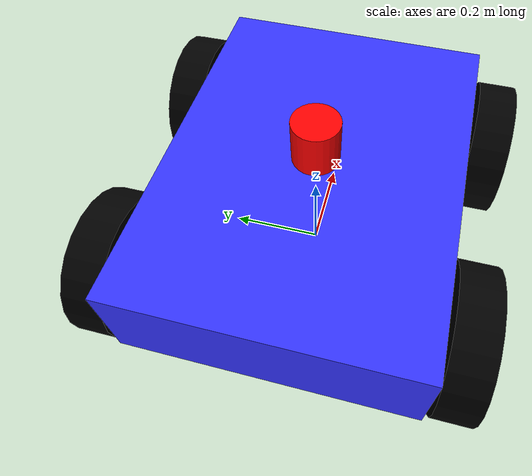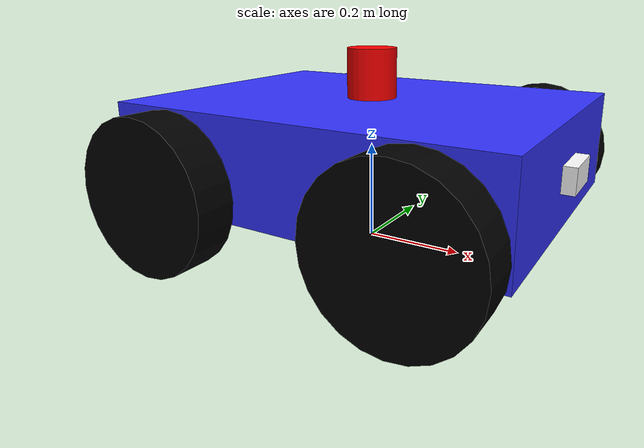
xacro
<?xml version="1.0"?>
<robot xmlns:xacro="http://www.ros.org/wiki/xacro" name="lunabot">

  <!-- Properties -->
  <xacro:property name="base_width" value="0.6"/>
  <xacro:property name="base_length" value="0.8"/>
  <xacro:property name="base_height" value="0.2"/>
  <xacro:property name="wheel_radius" value="0.15"/>
  <xacro:property name="wheel_width" value="0.08"/>
  <xacro:property name="wheel_ygap" value="0.05"/>
  <xacro:property name="wheel_zoff" value="0.05"/>
  <xacro:property name="wheel_xoff" value="0.25"/>

  <!-- Materials -->
  <material name="blue">
    <color rgba="0.2 0.2 1.0 1.0"/>
  </material>

  <material name="black">
    <color rgba="0.0 0.0 0.0 1.0"/>
  </material>

  <material name="white">
    <color rgba="1.0 1.0 1.0 1.0"/>
  </material>

  <material name="red">
    <color rgba="1.0 0.0 0.0 1.0"/>
  </material>

  <!-- Base Link -->
  <link name="base_link">
    <visual>
      <origin xyz="0 0 0" rpy="0 0 0"/>
      <geometry>
        <box size="${base_length} ${base_width} ${base_height}"/>
      </geometry>
      <material name="blue"/>
    </visual>
    <collision>
      <origin xyz="0 0 0" rpy="0 0 0"/>
      <geometry>
        <box size="${base_length} ${base_width} ${base_height}"/>
      </geometry>
    </collision>
    <inertial>
      <origin xyz="0 0 0" rpy="0 0 0"/>
      <mass value="20.0"/>
      <inertia ixx="1.0" ixy="0.0" ixz="0.0" iyy="1.0" iyz="0.0" izz="1.0"/>
    </inertial>
  </link>

  <!-- Footprint Link -->
  <link name="base_footprint"/>

  <joint name="base_joint" type="fixed">
    <parent link="base_footprint"/>
    <child link="base_link"/>
    <origin xyz="0.0 0.0 ${wheel_radius + wheel_zoff}" rpy="0 0 0"/>
  </joint>

  <!-- Wheels -->
  <xacro:macro name="wheel" params="prefix x_reflect y_reflect">
    <link name="${prefix}_wheel">
      <visual>
        <origin xyz="0 0 0" rpy="${pi/2} 0 0"/>
        <geometry>
          <cylinder radius="${wheel_radius}" length="${wheel_width}"/>
        </geometry>
        <material name="black"/>
      </visual>
      <collision>
        <origin xyz="0 0 0" rpy="${pi/2} 0 0"/>
        <geometry>
          <cylinder radius="${wheel_radius}" length="${wheel_width}"/>
        </geometry>
      </collision>
      <inertial>
        <origin xyz="0 0 0" rpy="${pi/2} 0 0"/>
        <mass value="2.0"/>
        <inertia ixx="0.1" ixy="0.0" ixz="0.0" iyy="0.1" iyz="0.0" izz="0.1"/>
      </inertial>
    </link>

    <joint name="${prefix}_wheel_joint" type="continuous">
      <parent link="base_link"/>
      <child link="${prefix}_wheel"/>
      <origin xyz="${x_reflect*wheel_xoff} ${y_reflect*(base_width/2+wheel_ygap)} ${-wheel_zoff}" rpy="0 0 0"/>
      <axis xyz="0 1 0"/>
    </joint>
  </xacro:macro>

  <xacro:wheel prefix="left_front" x_reflect="1" y_reflect="1" />
  <xacro:wheel prefix="right_front" x_reflect="1" y_reflect="-1" />
  <xacro:wheel prefix="left_rear" x_reflect="-1" y_reflect="1" />
  <xacro:wheel prefix="right_rear" x_reflect="-1" y_reflect="-1" />

  <!-- LiDAR -->
  <link name="lidar_link">
    <visual>
      <origin xyz="0 0 0" rpy="0 0 0"/>
      <geometry>
        <cylinder radius="0.05" length="0.1"/>
      </geometry>
      <material name="red"/>
    </visual>
    <collision>
      <origin xyz="0 0 0" rpy="0 0 0"/>
      <geometry>
        <cylinder radius="0.05" length="0.1"/>
      </geometry>
    </collision>
    <inertial>
      <origin xyz="0 0 0" rpy="0 0 0"/>
      <mass value="0.5"/>
      <inertia ixx="0.01" ixy="0.0" ixz="0.0" iyy="0.01" iyz="0.0" izz="0.01"/>
    </inertial>
  </link>

  <joint name="lidar_joint" type="fixed">
    <parent link="base_link"/>
    <child link="lidar_link"/>
    <origin xyz="0.0 0.0 ${base_height/2 + 0.05}" rpy="0 0 0"/>
  </joint>

  <!-- Camera -->
  <link name="camera_link">
    <visual>
      <origin xyz="0 0 0" rpy="0 0 0"/>
      <geometry>
        <box size="0.05 0.1 0.05"/>
      </geometry>
      <material name="white"/>
    </visual>
    <collision>
      <origin xyz="0 0 0" rpy="0 0 0"/>
      <geometry>
        <box size="0.05 0.1 0.05"/>
      </geometry>
    </collision>
    <inertial>
      <origin xyz="0 0 0" rpy="0 0 0"/>
      <mass value="0.2"/>
      <inertia ixx="0.001" ixy="0.0" ixz="0.0" iyy="0.001" iyz="0.0" izz="0.001"/>
    </inertial>
  </link>

  <joint name="camera_joint" type="fixed">
    <parent link="base_link"/>
    <child link="camera_link"/>
    <origin xyz="${base_length/2} 0.0 0.0" rpy="0 0 0"/>
  </joint>

  <!-- IMU -->
  <link name="imu_link">
    <inertial>
      <origin xyz="0 0 0" rpy="0 0 0"/>
      <mass value="0.01"/>
      <inertia ixx="0.0001" ixy="0.0" ixz="0.0" iyy="0.0001" iyz="0.0" izz="0.0001"/>
    </inertial>
  </link>

  <joint name="imu_joint" type="fixed">
    <parent link="base_link"/>
    <child link="imu_link"/>
    <origin xyz="0.0 0.0 0.0" rpy="0 0 0"/>
  </joint>

  <!-- Gazebo Plugins -->
  <gazebo>
    <plugin name="differential_drive_controller" filename="libgazebo_ros_diff_drive.so">
      <ros>
        <namespace>/</namespace>
        <remapping>cmd_vel:=cmd_vel</remapping>
        <remapping>odom:=odom</remapping>
      </ros>
      <update_rate>30</update_rate>
      <left_joint>left_front_wheel_joint</left_joint>
      <right_joint>right_front_wheel_joint</right_joint>
      <left_joint>left_rear_wheel_joint</left_joint>
      <right_joint>right_rear_wheel_joint</right_joint>
      <wheel_separation>${base_width + 2*wheel_ygap}</wheel_separation>
      <wheel_diameter>${2*wheel_radius}</wheel_diameter>
      <max_wheel_torque>20</max_wheel_torque>
      <max_wheel_acceleration>1.0</max_wheel_acceleration>
      <publish_odom>true</publish_odom>
      <publish_odom_tf>true</publish_odom_tf>
      <publish_wheel_tf>false</publish_wheel_tf>
      <odometry_frame>odom</odometry_frame>
      <robot_base_frame>base_footprint</robot_base_frame>
    </plugin>
  </gazebo>

  <!-- LiDAR Plugin -->
  <gazebo reference="lidar_link">
    <sensor type="ray" name="lidar_sensor">
      <pose>0 0 0 0 0 0</pose>
      <visualize>true</visualize>
      <update_rate>10</update_rate>
      <ray>
        <scan>
          <horizontal>
            <samples>360</samples>
            <resolution>1</resolution>
            <min_angle>-3.14159</min_angle>
            <max_angle>3.14159</max_angle>
          </horizontal>
        </scan>
        <range>
          <min>0.1</min>
          <max>30.0</max>
          <resolution>0.01</resolution>
        </range>
        <noise>
          <type>gaussian</type>
          <mean>0.0</mean>
          <stddev>0.01</stddev>
        </noise>
      </ray>
      <plugin name="gazebo_ros_lidar_controller" filename="libgazebo_ros_ray_sensor.so">
        <ros>
          <remapping>~/out:=scan</remapping>
        </ros>
        <output_type>sensor_msgs/LaserScan</output_type>
        <frame_name>lidar_link</frame_name>
      </plugin>
    </sensor>
  </gazebo>

  <!-- Camera Plugin -->
  <gazebo reference="camera_link">
    <sensor type="camera" name="camera_sensor">
      <update_rate>30.0</update_rate>
      <camera name="head">
        <horizontal_fov>1.3962634</horizontal_fov>
        <image>
          <width>800</width>
          <height>600</height>
          <format>R8G8B8</format>
        </image>
        <clip>
          <near>0.02</near>
          <far>300</far>
        </clip>
        <noise>
          <type>gaussian</type>
          <mean>0.0</mean>
          <stddev>0.007</stddev>
        </noise>
      </camera>
      <plugin name="camera_controller" filename="libgazebo_ros_camera.so">
        <ros>
          <remapping>image_raw:=camera/image_raw</remapping>
          <remapping>camera_info:=camera/camera_info</remapping>
        </ros>
        <camera_name>camera</camera_name>
        <frame_name>camera_link</frame_name>
        <hack_baseline>0.07</hack_baseline>
      </plugin>
    </sensor>
  </gazebo>

  <!-- IMU Plugin -->
  <gazebo reference="imu_link">
    <sensor name="imu_sensor" type="imu">
      <plugin filename="libgazebo_ros_imu_sensor.so" name="imu_plugin">
        <ros>
          <remapping>~/out:=imu</remapping>
        </ros>
        <initial_orientation_as_reference>false</initial_orientation_as_reference>
      </plugin>
      <always_on>true</always_on>
      <update_rate>100</update_rate>
      <visualize>true</visualize>
      <imu>
        <angular_velocity>
          <x>
            <noise type="gaussian">
              <mean>0.0</mean>
              <stddev>2e-4</stddev>
              <bias_mean>0.0000075</bias_mean>
              <bias_stddev>0.0000008</bias_stddev>
            </noise>
          </x>
          <y>
            <noise type="gaussian">
              <mean>0.0</mean>
              <stddev>2e-4</stddev>
              <bias_mean>0.0000075</bias_mean>
              <bias_stddev>0.0000008</bias_stddev>
            </noise>
          </y>
          <z>
            <noise type="gaussian">
              <mean>0.0</mean>
              <stddev>2e-4</stddev>
              <bias_mean>0.0000075</bias_mean>
              <bias_stddev>0.0000008</bias_stddev>
            </noise>
          </z>
        </angular_velocity>
        <linear_acceleration>
          <x>
            <noise type="gaussian">
              <mean>0.0</mean>
              <stddev>1.7e-2</stddev>
              <bias_mean>0.1</bias_mean>
              <bias_stddev>0.001</bias_stddev>
            </noise>
          </x>
          <y>
            <noise type="gaussian">
              <mean>0.0</mean>
              <stddev>1.7e-2</stddev>
              <bias_mean>0.1</bias_mean>
              <bias_stddev>0.001</bias_stddev>
            </noise>
          </y>
          <z>
            <noise type="gaussian">
              <mean>0.0</mean>
              <stddev>1.7e-2</stddev>
              <bias_mean>0.1</bias_mean>
              <bias_stddev>0.001</bias_stddev>
            </noise>
          </z>
        </linear_acceleration>
      </imu>
    </sensor>
  </gazebo>

</robot>
